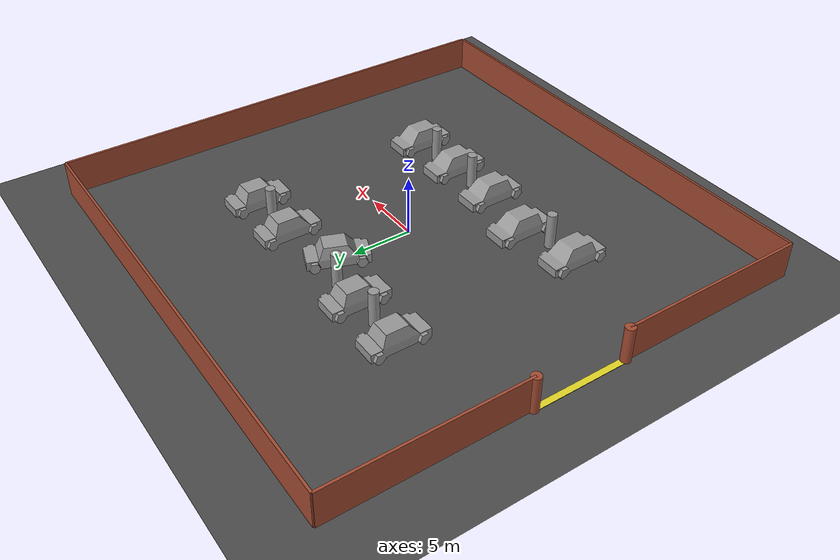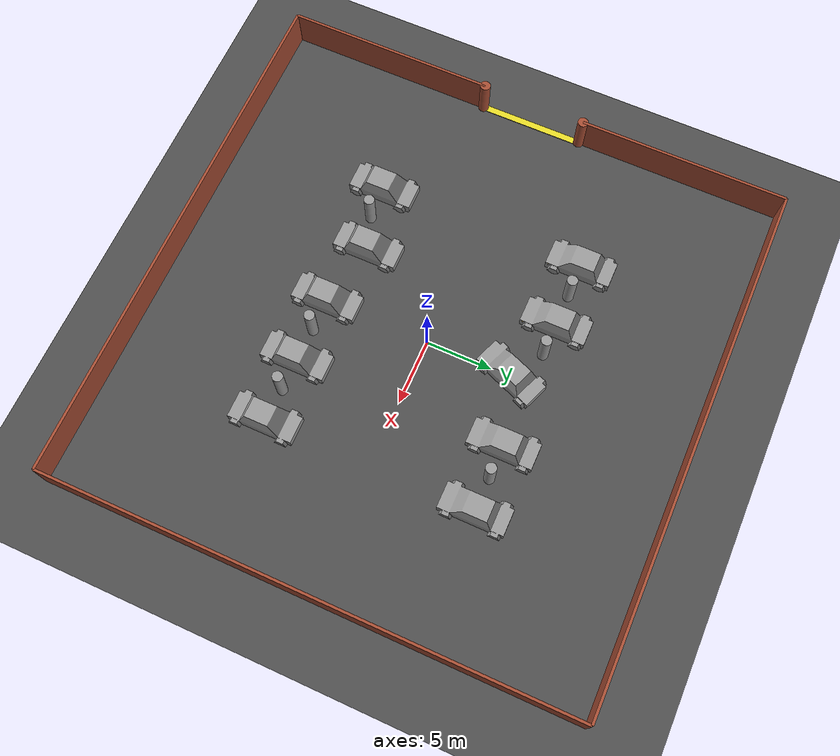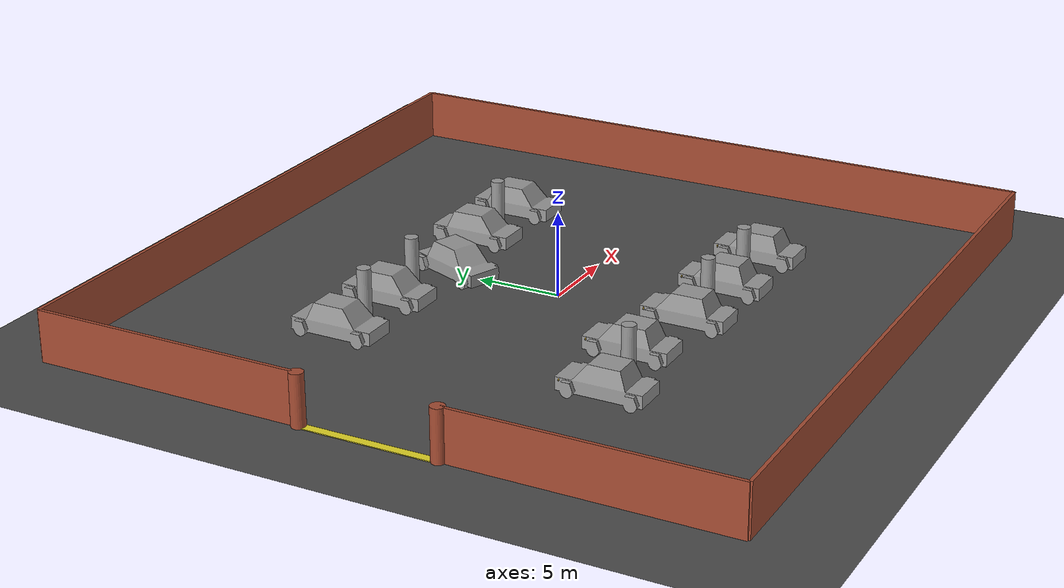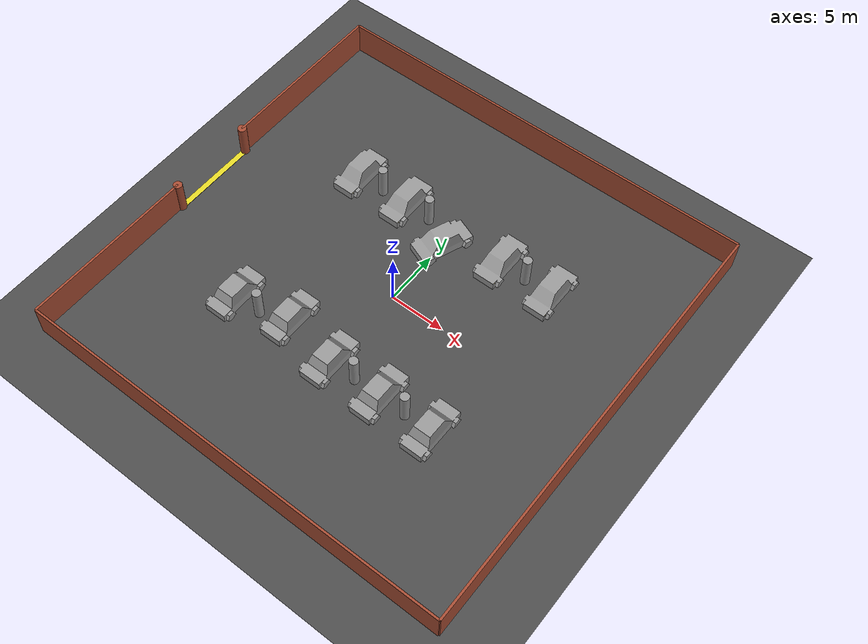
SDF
<sdf version="1.7">
 <world name="default">
  <light name="sun" type="directional">
   <pose>0 0 10 0 -0 0</pose>
   <diffuse>0.8 0.8 0.8 1</diffuse>
   <specular>0.2 0.2 0.2 1</specular>
   <direction>-0.5 0.1 -0.9</direction>
  </light>
  <gravity>0 0 -9.8</gravity>
  <physics type="ode">
   <max_step_size>0.001</max_step_size>
   <real_time_factor>1</real_time_factor>
   <real_time_update_rate>1000</real_time_update_rate>
  </physics>
  <scene><ambient>0.4 0.4 0.4 1</ambient><background>0.7 0.7 0.7 1</background><shadows>1</shadows></scene>
  <model name="custom_asphalt_plane">
   <static>true</static>
   <pose>0 0 -0.05 0 0 0</pose>
   <link name="link">
    <collision name="collision">
     <geometry><plane><normal>0 0 1</normal><size>50 50</size></plane></geometry>
     <surface><friction><ode><mu>100</mu><mu2>50</mu2></ode></friction></surface>
    </collision>
    <visual name="visual">
     <cast_shadows>false</cast_shadows>
     <geometry><plane><normal>0 0 1</normal><size>50 50</size></plane></geometry>
     <material>
      <script>
       <uri>model://asphalt_plane/materials/scripts</uri>
       <uri>model://asphalt_plane/materials/textures</uri>
       <name>vrc/asphalt</name>
      </script>
      <ambient>0.2 0.2 0.2 1</ambient>
      <diffuse>0.2 0.2 0.2 1</diffuse>
     </material>
    </visual>
   </link>
  </model>
  <include><name>car_a1</name><uri>model://electric_car</uri><pose>-10 8 1.0 0 0 1.57</pose></include>
  <include><name>car_a2</name><uri>model://electric_car</uri><pose>-5 8 1.0 0 0 1.57</pose></include>
  <include><name>car_a3</name><uri>model://electric_car</uri><pose>0 6.5 1.0 0 0 1.2</pose></include>
  <include><name>car_a4</name><uri>model://electric_car</uri><pose>5 8 1.0 0 0 1.57</pose></include>
  <include><name>car_a5</name><uri>model://electric_car</uri><pose>10 8 1.0 0 0 1.57</pose></include>
  <include><name>car_b1</name><uri>model://electric_car</uri><pose>-10 -8 1.0 0 0 -1.57</pose></include>
  <include><name>car_b2</name><uri>model://electric_car</uri><pose>-5 -7.0 1.0 0 0 -1.57</pose></include>
  <include><name>car_b3</name><uri>model://electric_car</uri><pose>0 -8 1.0 0 0 -1.57</pose></include>
  <include><name>car_b4</name><uri>model://electric_car</uri><pose>5 -8 1.0 0 0 -1.57</pose></include>
  <include><name>car_b5</name><uri>model://electric_car</uri><pose>10 -8 1.0 0 0 -1.57</pose></include>
  <model name="concrete_pillars">
   <static>true</static>
   <link name="pillar_a1">
    <pose>-7.5 8 1.5 0 0 0</pose>
    <collision name="c">
     <geometry><cylinder><radius>0.4</radius><length>3.0</length></cylinder></geometry>
    </collision>
    <visual name="v">
     <geometry><cylinder><radius>0.4</radius><length>3.0</length></cylinder></geometry>
     <material>
      <script><uri>file://media/materials/scripts/gazebo.material</uri><name>Gazebo/Grey</name></script>
     </material>
    </visual>
   </link>
   <link name="pillar_a2">
    <pose>-2.5 8 1.5 0 0 0</pose>
    <collision name="c">
     <geometry><cylinder><radius>0.4</radius><length>3.0</length></cylinder></geometry>
    </collision>
    <visual name="v">
     <geometry><cylinder><radius>0.4</radius><length>3.0</length></cylinder></geometry>
     <material>
      <script><uri>file://media/materials/scripts/gazebo.material</uri><name>Gazebo/Grey</name></script>
     </material>
    </visual>
   </link>
   <link name="pillar_a3">
    <pose>7.5 8 1.5 0 0 0</pose>
    <collision name="c">
     <geometry><cylinder><radius>0.4</radius><length>3.0</length></cylinder></geometry>
    </collision>
    <visual name="v">
     <geometry><cylinder><radius>0.4</radius><length>3.0</length></cylinder></geometry>
     <material>
      <script><uri>file://media/materials/scripts/gazebo.material</uri><name>Gazebo/Grey</name></script>
     </material>
    </visual>
   </link>
   <link name="pillar_b1">
    <pose>-7.5 -8 1.5 0 0 0</pose>
    <collision name="c">
     <geometry><cylinder><radius>0.4</radius><length>3.0</length></cylinder></geometry>
    </collision>
    <visual name="v">
     <geometry><cylinder><radius>0.4</radius><length>3.0</length></cylinder></geometry>
     <material>
      <script><uri>file://media/materials/scripts/gazebo.material</uri><name>Gazebo/Grey</name></script>
     </material>
    </visual>
   </link>
   <link name="pillar_b2">
    <pose>2.5 -8 1.5 0 0 0</pose>
    <collision name="c">
     <geometry><cylinder><radius>0.4</radius><length>3.0</length></cylinder></geometry>
    </collision>
    <visual name="v">
     <geometry><cylinder><radius>0.4</radius><length>3.0</length></cylinder></geometry>
     <material>
      <script><uri>file://media/materials/scripts/gazebo.material</uri><name>Gazebo/Grey</name></script>
     </material>
    </visual>
   </link>
   <link name="pillar_b3">
    <pose>7.5 -8 1.5 0 0 0</pose>
    <collision name="c">
     <geometry><cylinder><radius>0.4</radius><length>3.0</length></cylinder></geometry>
    </collision>
    <visual name="v">
     <geometry><cylinder><radius>0.4</radius><length>3.0</length></cylinder></geometry>
     <material>
      <script><uri>file://media/materials/scripts/gazebo.material</uri><name>Gazebo/Grey</name></script>
     </material>
    </visual>
   </link>
  </model>
  <model name="parking_gate">
   <static>true</static>
   <link name="gate_pillar_left">
    <pose>-20 4 1.5 0 0 0</pose>
    <collision name="c">
     <geometry><cylinder><radius>0.4</radius><length>3.0</length></cylinder></geometry>
    </collision>
    <visual name="v">
     <geometry><cylinder><radius>0.4</radius><length>3.0</length></cylinder></geometry>
     <material>
      <script><uri>file://media/materials/scripts/gazebo.material</uri><name>Gazebo/Bricks</name></script>
     </material>
    </visual>
   </link>
   <link name="gate_pillar_right">
    <pose>-20 -4 1.5 0 0 0</pose>
    <collision name="c">
     <geometry><cylinder><radius>0.4</radius><length>3.0</length></cylinder></geometry>
    </collision>
    <visual name="v">
     <geometry><cylinder><radius>0.4</radius><length>3.0</length></cylinder></geometry>
     <material>
      <script><uri>file://media/materials/scripts/gazebo.material</uri><name>Gazebo/Bricks</name></script>
     </material>
    </visual>
   </link>
   <link name="speed_bump_entrance">
    <pose>-20 0 0.025 0 0 0</pose>
    <collision name="c"><geometry><box><size>0.5 8 0.05</size></box></geometry></collision>
    <visual name="v">
     <geometry><box><size>0.5 8 0.05</size></box></geometry>
     <material>
      <script><uri>file://media/materials/scripts/gazebo.material</uri><name>Gazebo/Yellow</name></script>
     </material>
    </visual>
   </link>
  </model>
  <model name="boundary_walls">
   <static>true</static>
   <link name="wall_north">
    <pose>0 20 1.5 0 0 0</pose>
    <collision name="c"><geometry><box><size>40 0.2 3</size></box></geometry></collision>
    <visual name="v">
     <geometry><box><size>40 0.2 3</size></box></geometry>
     <material>
      <script><uri>file://media/materials/scripts/gazebo.material</uri><name>Gazebo/Bricks</name></script>
     </material>
    </visual>
   </link>
   <link name="wall_south">
    <pose>0 -20 1.5 0 0 0</pose>
    <collision name="c"><geometry><box><size>40 0.2 3</size></box></geometry></collision>
    <visual name="v">
     <geometry><box><size>40 0.2 3</size></box></geometry>
     <material>
      <script><uri>file://media/materials/scripts/gazebo.material</uri><name>Gazebo/Bricks</name></script>
     </material>
    </visual>
   </link>
   <link name="wall_west_upper">
    <pose>-20 12 1.5 0 0 1.57</pose>
    <collision name="c"><geometry><box><size>16 0.2 3</size></box></geometry></collision>
    <visual name="v">
     <geometry><box><size>16 0.2 3</size></box></geometry>
     <material>
      <script><uri>file://media/materials/scripts/gazebo.material</uri><name>Gazebo/Bricks</name></script>
     </material>
    </visual>
   </link>
   <link name="wall_west_lower">
    <pose>-20 -12 1.5 0 0 1.57</pose>
    <collision name="c"><geometry><box><size>16 0.2 3</size></box></geometry></collision>
    <visual name="v">
     <geometry><box><size>16 0.2 3</size></box></geometry>
     <material>
      <script><uri>file://media/materials/scripts/gazebo.material</uri><name>Gazebo/Bricks</name></script>
     </material>
    </visual>
   </link>
   <link name="wall_east">
    <pose>20 0 1.5 0 0 1.57</pose>
    <collision name="c"><geometry><box><size>40 0.2 3</size></box></geometry></collision>
    <visual name="v">
     <geometry><box><size>40 0.2 3</size></box></geometry>
     <material>
      <script><uri>file://media/materials/scripts/gazebo.material</uri><name>Gazebo/Bricks</name></script>
     </material>
    </visual>
   </link>
  </model>
 </world>
</sdf>

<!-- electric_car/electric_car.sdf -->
<sdf version="1.7">
  <model name="electric_car">
    <static>false</static>
    <link name="body">
      <visual name="visual_body">
        <pose>0 0 -1 0 0 1.57</pose>
        <geometry>
          <mesh>
            <uri>model://tram_sac_VF/meshes/newcar.stl</uri>
            <scale>0.001 0.001 0.0011</scale>
          </mesh>
        </geometry>
        <material>
          <script>
            <uri>file://media/materials/scripts/gazebo.material</uri>
            <name>Gazebo/Gray</name>
          </script>
        </material>
      </visual>

      <collision name="collision_body">
        <pose>0 0 0.0 0 0 0</pose>
        <geometry>
          <box>
            <size>4.2 2 1.8</size>
          </box>
        </geometry>
      </collision>

      <visual name="visual_cong_sac">
        <pose>0 0 -0.92 0 0 1.57</pose>
        <geometry>
          <mesh>
            <uri>model://tram_sac_VF/meshes/cong_sac1.stl</uri>
            <scale>0.001 0.001 0.001</scale>
          </mesh>
        </geometry>
        <material>
          <script>
            <uri>file://media/materials/scripts/gazebo.material</uri>
            <name>Gazebo/Gold</name>
          </script>
        </material>
      </visual>

      <collision name="collision_cong_sac">
        <pose>0 0 -0.92 0 0 1.57</pose>
        <geometry>
          <mesh>
            <uri>model://tram_sac_VF/meshes/cong_sac1.stl</uri>
            <scale>0.001 0.001 0.001</scale>
          </mesh>
        </geometry>
        <max_contacts>10</max_contacts>
        <surface>
          <friction>
            <ode>
              <mu>1.0</mu>
              <mu2>1.0</mu2>
            </ode>
          </friction>
        </surface>
      </collision>
    </link>

  </model>
</sdf>
